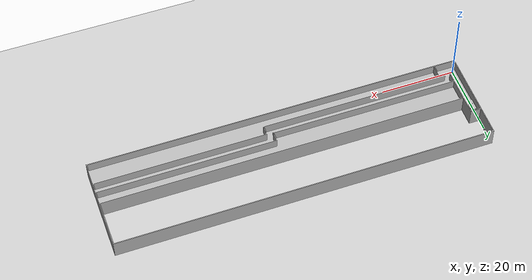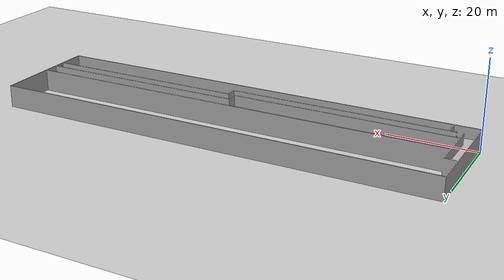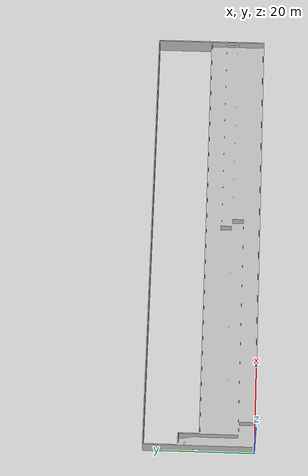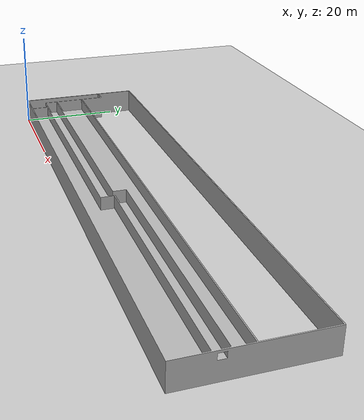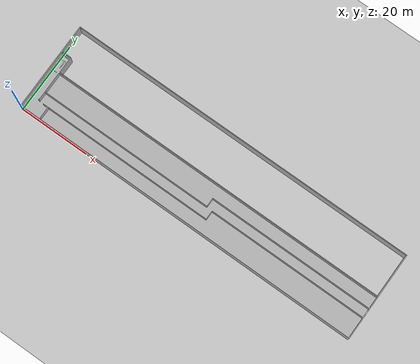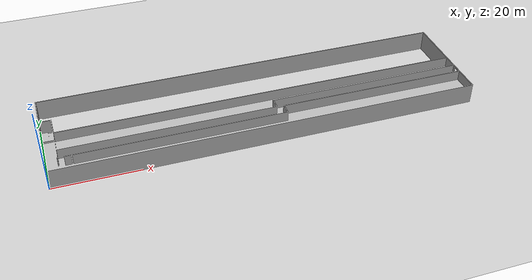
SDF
<?xml version="1.0" ?>
<sdf version="1.4">
  <world name="world">
    <include>
      <uri>model://ground_plane</uri>
    </include>

    <model name="willow_grove_indoor">
      <static>true</static>
      <link name="body">
        <visual name="visual">
          <pose>0 0 0.01 0 0 0</pose>
          <geometry>
            <mesh><uri>model://willow_grove_indoor/willow_grove_indoor.dae</uri></mesh>
          </geometry>
        </visual>
        <collision name="collision">
          <pose>0 0 -0.01 0 0 0</pose>
          <geometry>
            <mesh><uri>model://willow_grove_indoor/willow_grove_indoor.stl</uri></mesh>
          </geometry>
        </collision>
      </link>
    </model>
    <gui fullscreen='0'>
      <camera name='user_camera'>
        <pose>5.0 5.0 50.0 0.0 1.57 1.57</pose>
        <view_controller>orbit</view_controller>
      </camera>
    </gui>

    <light type="directional" name="sun1">
      <cast_shadows>true</cast_shadows>
      <pose>1 0 3 0 0 0</pose>
      <diffuse>0.8 0.8 0.8 1</diffuse>
      <specular>0.2 0.2 0.2 1</specular>
      <attenuation>
        <range>20</range>
        <constant>0.9</constant>
        <linear>0.01</linear>
        <quadratic>0.001</quadratic>
      </attenuation>
      <direction>-0.0 0.0 -1.0</direction>
    </light>

  </world>

</sdf>
